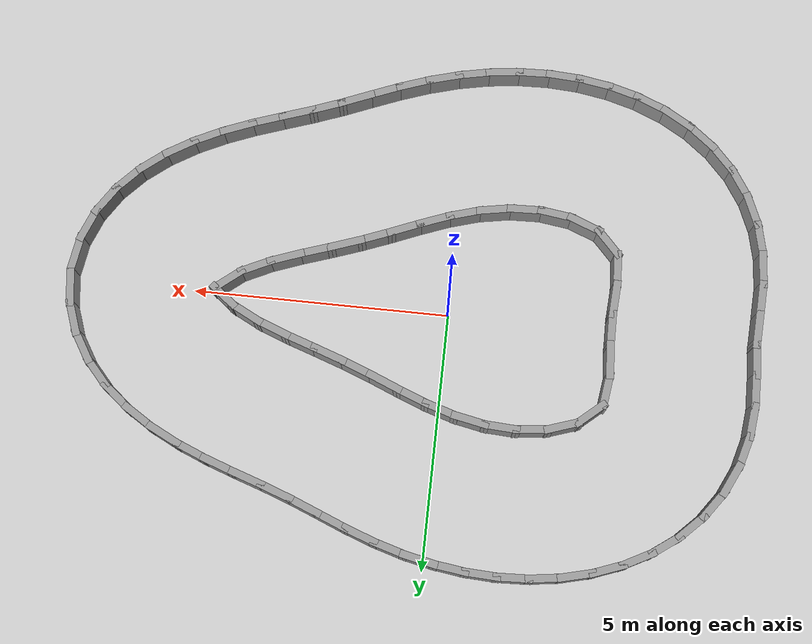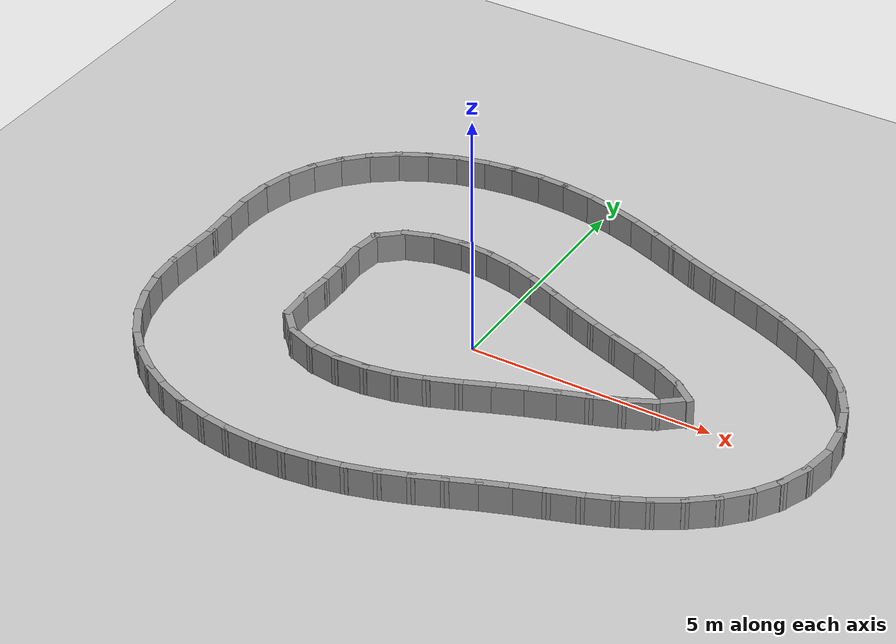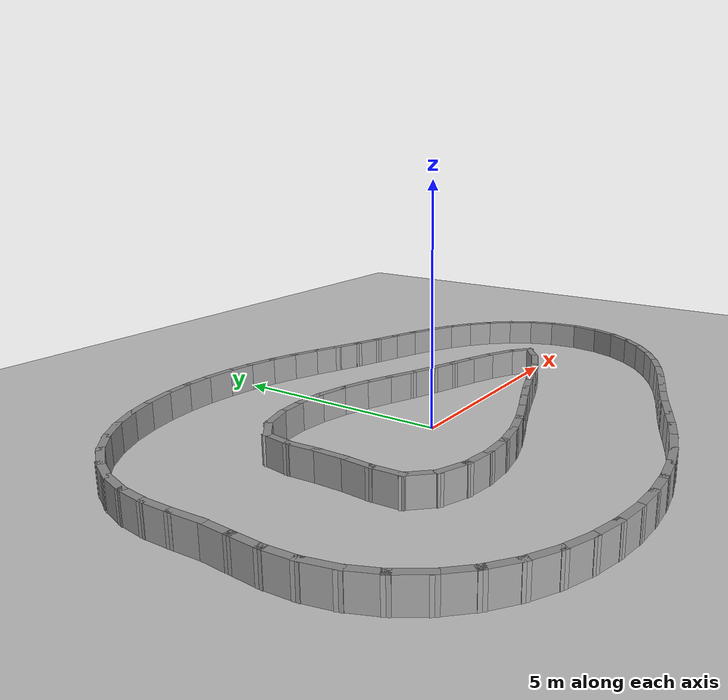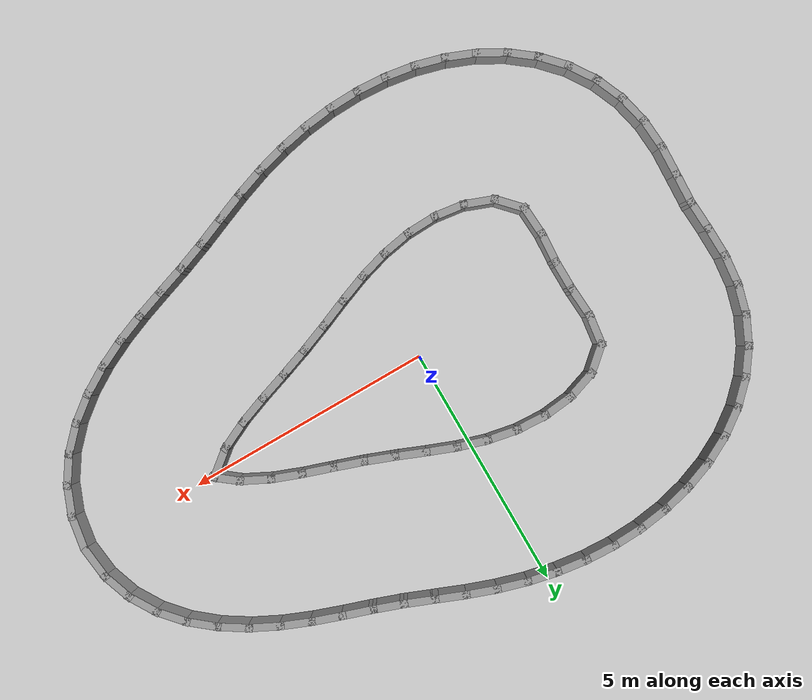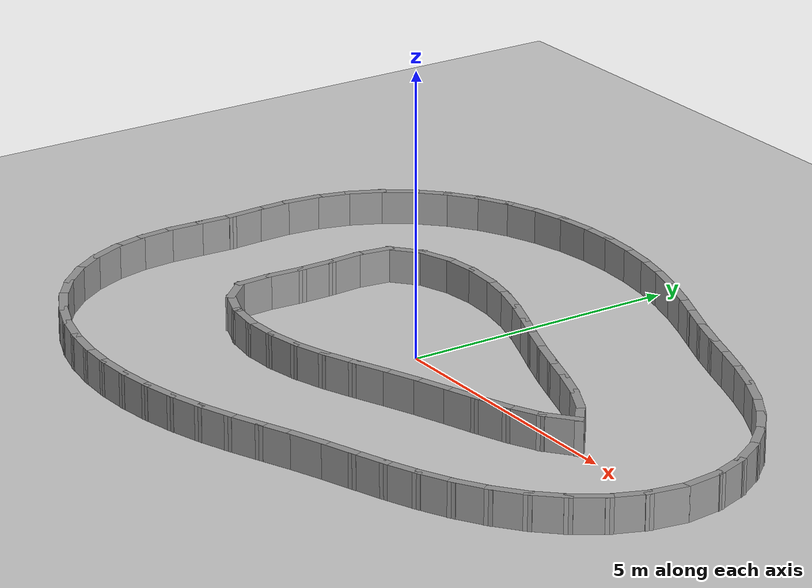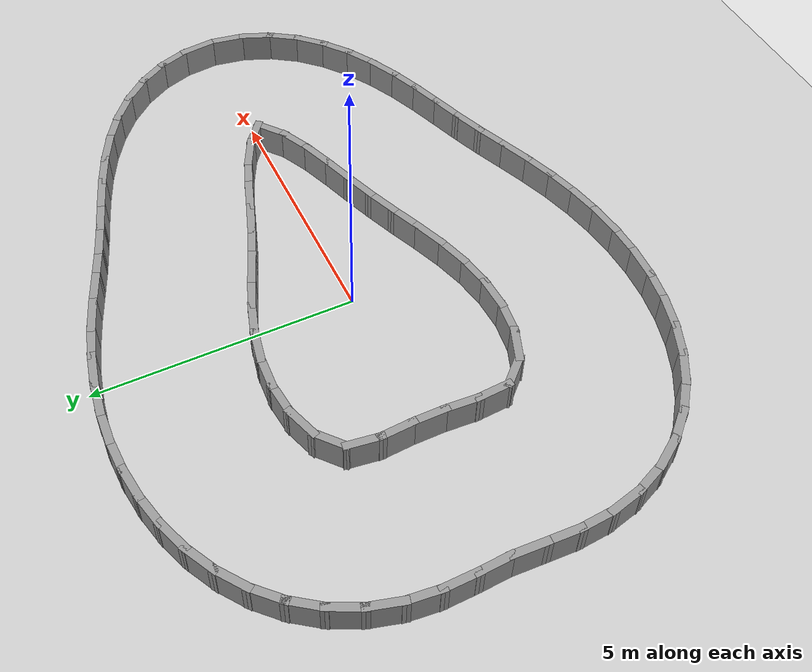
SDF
<sdf version="1.7">
 <world name="default">
  <model name="ground_plane">
   <static>1</static>
   <link name="link">
    <collision name="collision">
     <geometry><plane><normal>0 0 1</normal><size>100 100</size></plane></geometry>
     <surface><friction><ode><mu>100</mu><mu2>50</mu2></ode></friction></surface>
    </collision>
    <visual name="visual">
     <cast_shadows>0</cast_shadows>
     <geometry><plane><normal>0 0 1</normal><size>100 100</size></plane></geometry>
     <material>
      <script><uri>file://media/materials/scripts/gazebo.material</uri><name>Gazebo/Grey</name></script>
     </material>
    </visual>
   </link>
  </model>
  <model name="rand_lobed_04">
   <link name="Wall_0">
    <collision name="Wall_0_Collision">
     <geometry><box><size>0.6586 0.1500 0.6000</size></box></geometry>
     <pose>0 0 0.3000 0 -0 0</pose>
    </collision>
    <visual name="Wall_0_Visual">
     <pose>0 0 0.3000 0 -0 0</pose>
     <geometry><box><size>0.6586 0.1500 0.6000</size></box></geometry>
     <material>
      <script><uri>file://media/materials/scripts/gazebo.material</uri><name>Gazebo/Grey</name></script>
      <ambient>1 1 1 1</ambient>
     </material>
    </visual>
    <pose>4.3463 0.1569 0 0 -0 2.47651</pose>
   </link>
   <link name="Wall_1">
    <collision name="Wall_1_Collision">
     <geometry><box><size>0.7494 0.1500 0.6000</size></box></geometry>
     <pose>0 0 0.3000 0 -0 0</pose>
    </collision>
    <visual name="Wall_1_Visual">
     <pose>0 0 0.3000 0 -0 0</pose>
     <geometry><box><size>0.7494 0.1500 0.6000</size></box></geometry>
     <material>
      <script><uri>file://media/materials/scripts/gazebo.material</uri><name>Gazebo/Grey</name></script>
      <ambient>1 1 1 1</ambient>
     </material>
    </visual>
    <pose>3.8788 0.4494 0 0 -0 2.67255</pose>
   </link>
   <link name="Wall_2">
    <collision name="Wall_2_Collision">
     <geometry><box><size>0.7499 0.1500 0.6000</size></box></geometry>
     <pose>0 0 0.3000 0 -0 0</pose>
    </collision>
    <visual name="Wall_2_Visual">
     <pose>0 0 0.3000 0 -0 0</pose>
     <geometry><box><size>0.7499 0.1500 0.6000</size></box></geometry>
     <material>
      <script><uri>file://media/materials/scripts/gazebo.material</uri><name>Gazebo/Grey</name></script>
      <ambient>1 1 1 1</ambient>
     </material>
    </visual>
    <pose>3.3312 0.6915 0 0 -0 2.77813</pose>
   </link>
   <link name="Wall_3">
    <collision name="Wall_3_Collision">
     <geometry><box><size>0.7500 0.1500 0.6000</size></box></geometry>
     <pose>0 0 0.3000 0 -0 0</pose>
    </collision>
    <visual name="Wall_3_Visual">
     <pose>0 0 0.3000 0 -0 0</pose>
     <geometry><box><size>0.7500 0.1500 0.6000</size></box></geometry>
     <material>
      <script><uri>file://media/materials/scripts/gazebo.material</uri><name>Gazebo/Grey</name></script>
      <ambient>1 1 1 1</ambient>
     </material>
    </visual>
    <pose>2.7666 0.8940 0 0 -0 2.81615</pose>
   </link>
   <link name="Wall_4">
    <collision name="Wall_4_Collision">
     <geometry><box><size>0.7500 0.1500 0.6000</size></box></geometry>
     <pose>0 0 0.3000 0 -0 0</pose>
    </collision>
    <visual name="Wall_4_Visual">
     <pose>0 0 0.3000 0 -0 0</pose>
     <geometry><box><size>0.7500 0.1500 0.6000</size></box></geometry>
     <material>
      <script><uri>file://media/materials/scripts/gazebo.material</uri><name>Gazebo/Grey</name></script>
      <ambient>1 1 1 1</ambient>
     </material>
    </visual>
    <pose>2.1989 1.0882 0 0 -0 2.80778</pose>
   </link>
   <link name="Wall_5">
    <collision name="Wall_5_Collision">
     <geometry><box><size>0.7500 0.1500 0.6000</size></box></geometry>
     <pose>0 0 0.3000 0 -0 0</pose>
    </collision>
    <visual name="Wall_5_Visual">
     <pose>0 0 0.3000 0 -0 0</pose>
     <geometry><box><size>0.7500 0.1500 0.6000</size></box></geometry>
     <material>
      <script><uri>file://media/materials/scripts/gazebo.material</uri><name>Gazebo/Grey</name></script>
      <ambient>1 1 1 1</ambient>
     </material>
    </visual>
    <pose>1.6353 1.2939 0 0 -0 2.77568</pose>
   </link>
   <link name="Wall_6">
    <collision name="Wall_6_Collision">
     <geometry><box><size>0.7500 0.1500 0.6000</size></box></geometry>
     <pose>0 0 0.3000 0 -0 0</pose>
    </collision>
    <visual name="Wall_6_Visual">
     <pose>0 0 0.3000 0 -0 0</pose>
     <geometry><box><size>0.7500 0.1500 0.6000</size></box></geometry>
     <material>
      <script><uri>file://media/materials/scripts/gazebo.material</uri><name>Gazebo/Grey</name></script>
      <ambient>1 1 1 1</ambient>
     </material>
    </visual>
    <pose>1.0776 1.5149 0 0 -0 2.75279</pose>
   </link>
   <link name="Wall_7">
    <collision name="Wall_7_Collision">
     <geometry><box><size>0.7499 0.1500 0.6000</size></box></geometry>
     <pose>0 0 0.3000 0 -0 0</pose>
    </collision>
    <visual name="Wall_7_Visual">
     <pose>0 0 0.3000 0 -0 0</pose>
     <geometry><box><size>0.7499 0.1500 0.6000</size></box></geometry>
     <material>
      <script><uri>file://media/materials/scripts/gazebo.material</uri><name>Gazebo/Grey</name></script>
      <ambient>1 1 1 1</ambient>
     </material>
    </visual>
    <pose>0.5204 1.7374 0 0 -0 2.77068</pose>
   </link>
   <link name="Wall_8">
    <collision name="Wall_8_Collision">
     <geometry><box><size>0.7498 0.1500 0.6000</size></box></geometry>
     <pose>0 0 0.3000 0 -0 0</pose>
    </collision>
    <visual name="Wall_8_Visual">
     <pose>0 0 0.3000 0 -0 0</pose>
     <geometry><box><size>0.7498 0.1500 0.6000</size></box></geometry>
     <material>
      <script><uri>file://media/materials/scripts/gazebo.material</uri><name>Gazebo/Grey</name></script>
      <ambient>1 1 1 1</ambient>
     </material>
    </visual>
    <pose>-0.0455 1.9352 0 0 -0 2.83989</pose>
   </link>
   <link name="Wall_9">
    <collision name="Wall_9_Collision">
     <geometry><box><size>0.7496 0.1500 0.6000</size></box></geometry>
     <pose>0 0 0.3000 0 -0 0</pose>
    </collision>
    <visual name="Wall_9_Visual">
     <pose>0 0 0.3000 0 -0 0</pose>
     <geometry><box><size>0.7496 0.1500 0.6000</size></box></geometry>
     <material>
      <script><uri>file://media/materials/scripts/gazebo.material</uri><name>Gazebo/Grey</name></script>
      <ambient>1 1 1 1</ambient>
     </material>
    </visual>
    <pose>-0.6261 2.0819 0 0 -0 2.94856</pose>
   </link>
   <link name="Wall_10">
    <collision name="Wall_10_Collision">
     <geometry><box><size>0.7495 0.1500 0.6000</size></box></geometry>
     <pose>0 0 0.3000 0 -0 0</pose>
    </collision>
    <visual name="Wall_10_Visual">
     <pose>0 0 0.3000 0 -0 0</pose>
     <geometry><box><size>0.7495 0.1500 0.6000</size></box></geometry>
     <material>
      <script><uri>file://media/materials/scripts/gazebo.material</uri><name>Gazebo/Grey</name></script>
      <ambient>1 1 1 1</ambient>
     </material>
    </visual>
    <pose>-1.2196 2.1566 0 0 -0 3.08397</pose>
   </link>
   <link name="Wall_11">
    <collision name="Wall_11_Collision">
     <geometry><box><size>0.7492 0.1500 0.6000</size></box></geometry>
     <pose>0 0 0.3000 0 -0 0</pose>
    </collision>
    <visual name="Wall_11_Visual">
     <pose>0 0 0.3000 0 -0 0</pose>
     <geometry><box><size>0.7492 0.1500 0.6000</size></box></geometry>
     <material>
      <script><uri>file://media/materials/scripts/gazebo.material</uri><name>Gazebo/Grey</name></script>
      <ambient>1 1 1 1</ambient>
     </material>
    </visual>
    <pose>-1.8167 2.1422 0 0 -0 -3.03568</pose>
   </link>
   <link name="Wall_12">
    <collision name="Wall_12_Collision">
     <geometry><box><size>0.7483 0.1500 0.6000</size></box></geometry>
     <pose>0 0 0.3000 0 -0 0</pose>
    </collision>
    <visual name="Wall_12_Visual">
     <pose>0 0 0.3000 0 -0 0</pose>
     <geometry><box><size>0.7483 0.1500 0.6000</size></box></geometry>
     <material>
      <script><uri>file://media/materials/scripts/gazebo.material</uri><name>Gazebo/Grey</name></script>
      <ambient>1 1 1 1</ambient>
     </material>
    </visual>
    <pose>-2.3983 2.0155 0 0 -0 -2.81832</pose>
   </link>
   <link name="Wall_13">
    <collision name="Wall_13_Collision">
     <geometry><box><size>0.7410 0.1500 0.6000</size></box></geometry>
     <pose>0 0 0.3000 0 -0 0</pose>
    </collision>
    <visual name="Wall_13_Visual">
     <pose>0 0 0.3000 0 -0 0</pose>
     <geometry><box><size>0.7410 0.1500 0.6000</size></box></geometry>
     <material>
      <script><uri>file://media/materials/scripts/gazebo.material</uri><name>Gazebo/Grey</name></script>
      <ambient>1 1 1 1</ambient>
     </material>
    </visual>
    <pose>-2.9051 1.7268 0 0 -0 -2.42696</pose>
   </link>
   <link name="Wall_14">
    <collision name="Wall_14_Collision">
     <geometry><box><size>0.7429 0.1500 0.6000</size></box></geometry>
     <pose>0 0 0.3000 0 -0 0</pose>
    </collision>
    <visual name="Wall_14_Visual">
     <pose>0 0 0.3000 0 -0 0</pose>
     <geometry><box><size>0.7429 0.1500 0.6000</size></box></geometry>
     <material>
      <script><uri>file://media/materials/scripts/gazebo.material</uri><name>Gazebo/Grey</name></script>
      <ambient>1 1 1 1</ambient>
     </material>
    </visual>
    <pose>-3.1674 1.2393 0 0 -0 -1.70297</pose>
   </link>
   <link name="Wall_15">
    <collision name="Wall_15_Collision">
     <geometry><box><size>0.7500 0.1500 0.6000</size></box></geometry>
     <pose>0 0 0.3000 0 -0 0</pose>
    </collision>
    <visual name="Wall_15_Visual">
     <pose>0 0 0.3000 0 -0 0</pose>
     <geometry><box><size>0.7500 0.1500 0.6000</size></box></geometry>
     <material>
      <script><uri>file://media/materials/scripts/gazebo.material</uri><name>Gazebo/Grey</name></script>
      <ambient>1 1 1 1</ambient>
     </material>
    </visual>
    <pose>-3.1875 0.6461 0 0 -0 -1.50761</pose>
   </link>
   <link name="Wall_16">
    <collision name="Wall_16_Collision">
     <geometry><box><size>0.7498 0.1500 0.6000</size></box></geometry>
     <pose>0 0 0.3000 0 -0 0</pose>
    </collision>
    <visual name="Wall_16_Visual">
     <pose>0 0 0.3000 0 -0 0</pose>
     <geometry><box><size>0.7498 0.1500 0.6000</size></box></geometry>
     <material>
      <script><uri>file://media/materials/scripts/gazebo.material</uri><name>Gazebo/Grey</name></script>
      <ambient>1 1 1 1</ambient>
     </material>
    </visual>
    <pose>-3.1666 0.0468 0 0 -0 -1.56407</pose>
   </link>
   <link name="Wall_17">
    <collision name="Wall_17_Collision">
     <geometry><box><size>0.7500 0.1500 0.6000</size></box></geometry>
     <pose>0 0 0.3000 0 -0 0</pose>
    </collision>
    <visual name="Wall_17_Visual">
     <pose>0 0 0.3000 0 -0 0</pose>
     <geometry><box><size>0.7500 0.1500 0.6000</size></box></geometry>
     <material>
      <script><uri>file://media/materials/scripts/gazebo.material</uri><name>Gazebo/Grey</name></script>
      <ambient>1 1 1 1</ambient>
     </material>
    </visual>
    <pose>-3.1829 -0.5525 0 0 -0 -1.63219</pose>
   </link>
   <link name="Wall_18">
    <collision name="Wall_18_Collision">
     <geometry><box><size>0.7464 0.1500 0.6000</size></box></geometry>
     <pose>0 0 0.3000 0 -0 0</pose>
    </collision>
    <visual name="Wall_18_Visual">
     <pose>0 0 0.3000 0 -0 0</pose>
     <geometry><box><size>0.7464 0.1500 0.6000</size></box></geometry>
     <material>
      <script><uri>file://media/materials/scripts/gazebo.material</uri><name>Gazebo/Grey</name></script>
      <ambient>1 1 1 1</ambient>
     </material>
    </visual>
    <pose>-3.1834 -1.1496 0 0 -0 -1.51058</pose>
   </link>
   <link name="Wall_19">
    <collision name="Wall_19_Collision">
     <geometry><box><size>0.7371 0.1500 0.6000</size></box></geometry>
     <pose>0 0 0.3000 0 -0 0</pose>
    </collision>
    <visual name="Wall_19_Visual">
     <pose>0 0 0.3000 0 -0 0</pose>
     <geometry><box><size>0.7371 0.1500 0.6000</size></box></geometry>
     <material>
      <script><uri>file://media/materials/scripts/gazebo.material</uri><name>Gazebo/Grey</name></script>
      <ambient>1 1 1 1</ambient>
     </material>
    </visual>
    <pose>-2.9649 -1.6616 0 0 -0 -0.81848</pose>
   </link>
   <link name="Wall_20">
    <collision name="Wall_20_Collision">
     <geometry><box><size>0.7479 0.1500 0.6000</size></box></geometry>
     <pose>0 0 0.3000 0 -0 0</pose>
    </collision>
    <visual name="Wall_20_Visual">
     <pose>0 0 0.3000 0 -0 0</pose>
     <geometry><box><size>0.7479 0.1500 0.6000</size></box></geometry>
     <material>
      <script><uri>file://media/materials/scripts/gazebo.material</uri><name>Gazebo/Grey</name></script>
      <ambient>1 1 1 1</ambient>
     </material>
    </visual>
    <pose>-2.4852 -1.9831 0 0 -0 -0.36658</pose>
   </link>
   <link name="Wall_21">
    <collision name="Wall_21_Collision">
     <geometry><box><size>0.7491 0.1500 0.6000</size></box></geometry>
     <pose>0 0 0.3000 0 -0 0</pose>
    </collision>
    <visual name="Wall_21_Visual">
     <pose>0 0 0.3000 0 -0 0</pose>
     <geometry><box><size>0.7491 0.1500 0.6000</size></box></geometry>
     <material>
      <script><uri>file://media/materials/scripts/gazebo.material</uri><name>Gazebo/Grey</name></script>
      <ambient>1 1 1 1</ambient>
     </material>
    </visual>
    <pose>-1.9092 -2.1306 0 0 -0 -0.13513</pose>
   </link>
   <link name="Wall_22">
    <collision name="Wall_22_Collision">
     <geometry><box><size>0.7494 0.1500 0.6000</size></box></geometry>
     <pose>0 0 0.3000 0 -0 0</pose>
    </collision>
    <visual name="Wall_22_Visual">
     <pose>0 0 0.3000 0 -0 0</pose>
     <geometry><box><size>0.7494 0.1500 0.6000</size></box></geometry>
     <material>
      <script><uri>file://media/materials/scripts/gazebo.material</uri><name>Gazebo/Grey</name></script>
      <ambient>1 1 1 1</ambient>
     </material>
    </visual>
    <pose>-1.3129 -2.1607 0 0 -0 0.03424</pose>
   </link>
   <link name="Wall_23">
    <collision name="Wall_23_Collision">
     <geometry><box><size>0.7496 0.1500 0.6000</size></box></geometry>
     <pose>0 0 0.3000 0 -0 0</pose>
    </collision>
    <visual name="Wall_23_Visual">
     <pose>0 0 0.3000 0 -0 0</pose>
     <geometry><box><size>0.7496 0.1500 0.6000</size></box></geometry>
     <material>
      <script><uri>file://media/materials/scripts/gazebo.material</uri><name>Gazebo/Grey</name></script>
      <ambient>1 1 1 1</ambient>
     </material>
    </visual>
    <pose>-0.7181 -2.0987 0 0 -0 0.17348</pose>
   </link>
   <link name="Wall_24">
    <collision name="Wall_24_Collision">
     <geometry><box><size>0.7498 0.1500 0.6000</size></box></geometry>
     <pose>0 0 0.3000 0 -0 0</pose>
    </collision>
    <visual name="Wall_24_Visual">
     <pose>0 0 0.3000 0 -0 0</pose>
     <geometry><box><size>0.7498 0.1500 0.6000</size></box></geometry>
     <material>
      <script><uri>file://media/materials/scripts/gazebo.material</uri><name>Gazebo/Grey</name></script>
      <ambient>1 1 1 1</ambient>
     </material>
    </visual>
    <pose>-0.1351 -1.9621 0 0 -0 0.28691</pose>
   </link>
   <link name="Wall_25">
    <collision name="Wall_25_Collision">
     <geometry><box><size>0.7499 0.1500 0.6000</size></box></geometry>
     <pose>0 0 0.3000 0 -0 0</pose>
    </collision>
    <visual name="Wall_25_Visual">
     <pose>0 0 0.3000 0 -0 0</pose>
     <geometry><box><size>0.7499 0.1500 0.6000</size></box></geometry>
     <material>
      <script><uri>file://media/materials/scripts/gazebo.material</uri><name>Gazebo/Grey</name></script>
      <ambient>1 1 1 1</ambient>
     </material>
    </visual>
    <pose>0.4329 -1.7706 0 0 -0 0.36337</pose>
   </link>
   <link name="Wall_26">
    <collision name="Wall_26_Collision">
     <geometry><box><size>0.7500 0.1500 0.6000</size></box></geometry>
     <pose>0 0 0.3000 0 -0 0</pose>
    </collision>
    <visual name="Wall_26_Visual">
     <pose>0 0 0.3000 0 -0 0</pose>
     <geometry><box><size>0.7500 0.1500 0.6000</size></box></geometry>
     <material>
      <script><uri>file://media/materials/scripts/gazebo.material</uri><name>Gazebo/Grey</name></script>
      <ambient>1 1 1 1</ambient>
     </material>
    </visual>
    <pose>0.9908 -1.5501 0 0 -0 0.38929</pose>
   </link>
   <link name="Wall_27">
    <collision name="Wall_27_Collision">
     <geometry><box><size>0.7500 0.1500 0.6000</size></box></geometry>
     <pose>0 0 0.3000 0 -0 0</pose>
    </collision>
    <visual name="Wall_27_Visual">
     <pose>0 0 0.3000 0 -0 0</pose>
     <geometry><box><size>0.7500 0.1500 0.6000</size></box></geometry>
     <material>
      <script><uri>file://media/materials/scripts/gazebo.material</uri><name>Gazebo/Grey</name></script>
      <ambient>1 1 1 1</ambient>
     </material>
    </visual>
    <pose>1.5479 -1.3275 0 0 -0 0.37100</pose>
   </link>
   <link name="Wall_28">
    <collision name="Wall_28_Collision">
     <geometry><box><size>0.7500 0.1500 0.6000</size></box></geometry>
     <pose>0 0 0.3000 0 -0 0</pose>
    </collision>
    <visual name="Wall_28_Visual">
     <pose>0 0 0.3000 0 -0 0</pose>
     <geometry><box><size>0.7500 0.1500 0.6000</size></box></geometry>
     <material>
      <script><uri>file://media/materials/scripts/gazebo.material</uri><name>Gazebo/Grey</name></script>
      <ambient>1 1 1 1</ambient>
     </material>
    </visual>
    <pose>2.1105 -1.1193 0 0 -0 0.33800</pose>
   </link>
   <link name="Wall_29">
    <collision name="Wall_29_Collision">
     <geometry><box><size>0.7500 0.1500 0.6000</size></box></geometry>
     <pose>0 0 0.3000 0 -0 0</pose>
    </collision>
    <visual name="Wall_29_Visual">
     <pose>0 0 0.3000 0 -0 0</pose>
     <geometry><box><size>0.7500 0.1500 0.6000</size></box></geometry>
     <material>
      <script><uri>file://media/materials/scripts/gazebo.material</uri><name>Gazebo/Grey</name></script>
      <ambient>1 1 1 1</ambient>
     </material>
    </visual>
    <pose>2.6779 -0.9243 0 0 -0 0.32415</pose>
   </link>
   <link name="Wall_30">
    <collision name="Wall_30_Collision">
     <geometry><box><size>0.7499 0.1500 0.6000</size></box></geometry>
     <pose>0 0 0.3000 0 -0 0</pose>
    </collision>
    <visual name="Wall_30_Visual">
     <pose>0 0 0.3000 0 -0 0</pose>
     <geometry><box><size>0.7499 0.1500 0.6000</size></box></geometry>
     <material>
      <script><uri>file://media/materials/scripts/gazebo.material</uri><name>Gazebo/Grey</name></script>
      <ambient>1 1 1 1</ambient>
     </material>
    </visual>
    <pose>3.2437 -0.7248 0 0 -0 0.35379</pose>
   </link>
   <link name="Wall_31">
    <collision name="Wall_31_Collision">
     <geometry><box><size>0.7495 0.1500 0.6000</size></box></geometry>
     <pose>0 0 0.3000 0 -0 0</pose>
    </collision>
    <visual name="Wall_31_Visual">
     <pose>0 0 0.3000 0 -0 0</pose>
     <geometry><box><size>0.7495 0.1500 0.6000</size></box></geometry>
     <material>
      <script><uri>file://media/materials/scripts/gazebo.material</uri><name>Gazebo/Grey</name></script>
      <ambient>1 1 1 1</ambient>
     </material>
    </visual>
    <pose>3.7954 -0.4914 0 0 -0 0.44647</pose>
   </link>
   <link name="Wall_32">
    <collision name="Wall_32_Collision">
     <geometry><box><size>0.7461 0.1500 0.6000</size></box></geometry>
     <pose>0 0 0.3000 0 -0 0</pose>
    </collision>
    <visual name="Wall_32_Visual">
     <pose>0 0 0.3000 0 -0 0</pose>
     <geometry><box><size>0.7461 0.1500 0.6000</size></box></geometry>
     <material>
      <script><uri>file://media/materials/scripts/gazebo.material</uri><name>Gazebo/Grey</name></script>
      <ambient>1 1 1 1</ambient>
     </material>
    </visual>
    <pose>4.2983 -0.1755 0 0 -0 0.67607</pose>
   </link>
   <link name="Wall_33">
    <collision name="Wall_33_Collision">
     <geometry><box><size>0.7487 0.1500 0.6000</size></box></geometry>
     <pose>0 0 0.3000 0 -0 0</pose>
    </collision>
    <visual name="Wall_33_Visual">
     <pose>0 0 0.3000 0 -0 0</pose>
     <geometry><box><size>0.7487 0.1500 0.6000</size></box></geometry>
     <material>
      <script><uri>file://media/materials/scripts/gazebo.material</uri><name>Gazebo/Grey</name></script>
      <ambient>1 1 1 1</ambient>
     </material>
    </visual>
    <pose>7.3171 0.2974 0 0 -0 1.68537</pose>
   </link>
   <link name="Wall_34">
    <collision name="Wall_34_Collision">
     <geometry><box><size>0.7488 0.1500 0.6000</size></box></geometry>
     <pose>0 0 0.3000 0 -0 0</pose>
    </collision>
    <visual name="Wall_34_Visual">
     <pose>0 0 0.3000 0 -0 0</pose>
     <geometry><box><size>0.7488 0.1500 0.6000</size></box></geometry>
     <material>
      <script><uri>file://media/materials/scripts/gazebo.material</uri><name>Gazebo/Grey</name></script>
      <ambient>1 1 1 1</ambient>
     </material>
    </visual>
    <pose>7.1838 0.8773 0 0 -0 1.90836</pose>
   </link>
   <link name="Wall_35">
    <collision name="Wall_35_Collision">
     <geometry><box><size>0.7490 0.1500 0.6000</size></box></geometry>
     <pose>0 0 0.3000 0 -0 0</pose>
    </collision>
    <visual name="Wall_35_Visual">
     <pose>0 0 0.3000 0 -0 0</pose>
     <geometry><box><size>0.7490 0.1500 0.6000</size></box></geometry>
     <material>
      <script><uri>file://media/materials/scripts/gazebo.material</uri><name>Gazebo/Grey</name></script>
      <ambient>1 1 1 1</ambient>
     </material>
    </visual>
    <pose>6.9296 1.4161 0 0 -0 2.11467</pose>
   </link>
   <link name="Wall_36">
    <collision name="Wall_36_Collision">
     <geometry><box><size>0.7493 0.1500 0.6000</size></box></geometry>
     <pose>0 0 0.3000 0 -0 0</pose>
    </collision>
    <visual name="Wall_36_Visual">
     <pose>0 0 0.3000 0 -0 0</pose>
     <geometry><box><size>0.7493 0.1500 0.6000</size></box></geometry>
     <material>
      <script><uri>file://media/materials/scripts/gazebo.material</uri><name>Gazebo/Grey</name></script>
      <ambient>1 1 1 1</ambient>
     </material>
    </visual>
    <pose>6.5758 1.8966 0 0 -0 2.29629</pose>
   </link>
   <link name="Wall_37">
    <collision name="Wall_37_Collision">
     <geometry><box><size>0.7495 0.1500 0.6000</size></box></geometry>
     <pose>0 0 0.3000 0 -0 0</pose>
    </collision>
    <visual name="Wall_37_Visual">
     <pose>0 0 0.3000 0 -0 0</pose>
     <geometry><box><size>0.7495 0.1500 0.6000</size></box></geometry>
     <material>
      <script><uri>file://media/materials/scripts/gazebo.material</uri><name>Gazebo/Grey</name></script>
      <ambient>1 1 1 1</ambient>
     </material>
    </visual>
    <pose>6.1461 2.3120 0 0 -0 2.44978</pose>
   </link>
   <link name="Wall_38">
    <collision name="Wall_38_Collision">
     <geometry><box><size>0.7497 0.1500 0.6000</size></box></geometry>
     <pose>0 0 0.3000 0 -0 0</pose>
    </collision>
    <visual name="Wall_38_Visual">
     <pose>0 0 0.3000 0 -0 0</pose>
     <geometry><box><size>0.7497 0.1500 0.6000</size></box></geometry>
     <material>
      <script><uri>file://media/materials/scripts/gazebo.material</uri><name>Gazebo/Grey</name></script>
      <ambient>1 1 1 1</ambient>
     </material>
    </visual>
    <pose>5.6622 2.6640 0 0 -0 2.57557</pose>
   </link>
   <link name="Wall_39">
    <collision name="Wall_39_Collision">
     <geometry><box><size>0.7498 0.1500 0.6000</size></box></geometry>
     <pose>0 0 0.3000 0 -0 0</pose>
    </collision>
    <visual name="Wall_39_Visual">
     <pose>0 0 0.3000 0 -0 0</pose>
     <geometry><box><size>0.7498 0.1500 0.6000</size></box></geometry>
     <material>
      <script><uri>file://media/materials/scripts/gazebo.material</uri><name>Gazebo/Grey</name></script>
      <ambient>1 1 1 1</ambient>
     </material>
    </visual>
    <pose>5.1412 2.9595 0 0 -0 2.67579</pose>
   </link>
   <link name="Wall_40">
    <collision name="Wall_40_Collision">
     <geometry><box><size>0.7499 0.1500 0.6000</size></box></geometry>
     <pose>0 0 0.3000 0 -0 0</pose>
    </collision>
    <visual name="Wall_40_Visual">
     <pose>0 0 0.3000 0 -0 0</pose>
     <geometry><box><size>0.7499 0.1500 0.6000</size></box></geometry>
     <material>
      <script><uri>file://media/materials/scripts/gazebo.material</uri><name>Gazebo/Grey</name></script>
      <ambient>1 1 1 1</ambient>
     </material>
    </visual>
    <pose>4.5958 3.2083 0 0 -0 2.75162</pose>
   </link>
   <link name="Wall_41">
    <collision name="Wall_41_Collision">
     <geometry><box><size>0.7500 0.1500 0.6000</size></box></geometry>
     <pose>0 0 0.3000 0 -0 0</pose>
    </collision>
    <visual name="Wall_41_Visual">
     <pose>0 0 0.3000 0 -0 0</pose>
     <geometry><box><size>0.7500 0.1500 0.6000</size></box></geometry>
     <material>
      <script><uri>file://media/materials/scripts/gazebo.material</uri><name>Gazebo/Grey</name></script>
      <ambient>1 1 1 1</ambient>
     </material>
    </visual>
    <pose>4.0356 3.4224 0 0 -0 2.80123</pose>
   </link>
   <link name="Wall_42">
    <collision name="Wall_42_Collision">
     <geometry><box><size>0.7500 0.1500 0.6000</size></box></geometry>
     <pose>0 0 0.3000 0 -0 0</pose>
    </collision>
    <visual name="Wall_42_Visual">
     <pose>0 0 0.3000 0 -0 0</pose>
     <geometry><box><size>0.7500 0.1500 0.6000</size></box></geometry>
     <material>
      <script><uri>file://media/materials/scripts/gazebo.material</uri><name>Gazebo/Grey</name></script>
      <ambient>1 1 1 1</ambient>
     </material>
    </visual>
    <pose>3.4685 3.6181 0 0 -0 2.81755</pose>
   </link>
   <link name="Wall_43">
    <collision name="Wall_43_Collision">
     <geometry><box><size>0.7500 0.1500 0.6000</size></box></geometry>
     <pose>0 0 0.3000 0 -0 0</pose>
    </collision>
    <visual name="Wall_43_Visual">
     <pose>0 0 0.3000 0 -0 0</pose>
     <geometry><box><size>0.7500 0.1500 0.6000</size></box></geometry>
     <material>
      <script><uri>file://media/materials/scripts/gazebo.material</uri><name>Gazebo/Grey</name></script>
      <ambient>1 1 1 1</ambient>
     </material>
    </visual>
    <pose>2.9020 3.8157 0 0 -0 2.79449</pose>
   </link>
   <link name="Wall_44">
    <collision name="Wall_44_Collision">
     <geometry><box><size>0.7500 0.1500 0.6000</size></box></geometry>
     <pose>0 0 0.3000 0 -0 0</pose>
    </collision>
    <visual name="Wall_44_Visual">
     <pose>0 0 0.3000 0 -0 0</pose>
     <geometry><box><size>0.7500 0.1500 0.6000</size></box></geometry>
     <material>
      <script><uri>file://media/materials/scripts/gazebo.material</uri><name>Gazebo/Grey</name></script>
      <ambient>1 1 1 1</ambient>
     </material>
    </visual>
    <pose>2.3416 4.0298 0 0 -0 2.75859</pose>
   </link>
   <link name="Wall_45">
    <collision name="Wall_45_Collision">
     <geometry><box><size>0.7500 0.1500 0.6000</size></box></geometry>
     <pose>0 0 0.3000 0 -0 0</pose>
    </collision>
    <visual name="Wall_45_Visual">
     <pose>0 0 0.3000 0 -0 0</pose>
     <geometry><box><size>0.7500 0.1500 0.6000</size></box></geometry>
     <material>
      <script><uri>file://media/materials/scripts/gazebo.material</uri><name>Gazebo/Grey</name></script>
      <ambient>1 1 1 1</ambient>
     </material>
    </visual>
    <pose>1.7853 4.2544 0 0 -0 2.75732</pose>
   </link>
   <link name="Wall_46">
    <collision name="Wall_46_Collision">
     <geometry><box><size>0.7499 0.1500 0.6000</size></box></geometry>
     <pose>0 0 0.3000 0 -0 0</pose>
    </collision>
    <visual name="Wall_46_Visual">
     <pose>0 0 0.3000 0 -0 0</pose>
     <geometry><box><size>0.7499 0.1500 0.6000</size></box></geometry>
     <material>
      <script><uri>file://media/materials/scripts/gazebo.material</uri><name>Gazebo/Grey</name></script>
      <ambient>1 1 1 1</ambient>
     </material>
    </visual>
    <pose>1.2250 4.4689 0 0 -0 2.79460</pose>
   </link>
   <link name="Wall_47">
    <collision name="Wall_47_Collision">
     <geometry><box><size>0.7499 0.1500 0.6000</size></box></geometry>
     <pose>0 0 0.3000 0 -0 0</pose>
    </collision>
    <visual name="Wall_47_Visual">
     <pose>0 0 0.3000 0 -0 0</pose>
     <geometry><box><size>0.7499 0.1500 0.6000</size></box></geometry>
     <material>
      <script><uri>file://media/materials/scripts/gazebo.material</uri><name>Gazebo/Grey</name></script>
      <ambient>1 1 1 1</ambient>
     </material>
    </visual>
    <pose>0.6553 4.6558 0 0 -0 2.85461</pose>
   </link>
   <link name="Wall_48">
    <collision name="Wall_48_Collision">
     <geometry><box><size>0.7499 0.1500 0.6000</size></box></geometry>
     <pose>0 0 0.3000 0 -0 0</pose>
    </collision>
    <visual name="Wall_48_Visual">
     <pose>0 0 0.3000 0 -0 0</pose>
     <geometry><box><size>0.7499 0.1500 0.6000</size></box></geometry>
     <material>
      <script><uri>file://media/materials/scripts/gazebo.material</uri><name>Gazebo/Grey</name></script>
      <ambient>1 1 1 1</ambient>
     </material>
    </visual>
    <pose>0.0746 4.8046 0 0 -0 2.92682</pose>
   </link>
   <link name="Wall_49">
    <collision name="Wall_49_Collision">
     <geometry><box><size>0.7498 0.1500 0.6000</size></box></geometry>
     <pose>0 0 0.3000 0 -0 0</pose>
    </collision>
    <visual name="Wall_49_Visual">
     <pose>0 0 0.3000 0 -0 0</pose>
     <geometry><box><size>0.7498 0.1500 0.6000</size></box></geometry>
     <material>
      <script><uri>file://media/materials/scripts/gazebo.material</uri><name>Gazebo/Grey</name></script>
      <ambient>1 1 1 1</ambient>
     </material>
    </visual>
    <pose>-0.5156 4.9089 0 0 -0 3.00641</pose>
   </link>
   <link name="Wall_50">
    <collision name="Wall_50_Collision">
     <geometry><box><size>0.7498 0.1500 0.6000</size></box></geometry>
     <pose>0 0 0.3000 0 -0 0</pose>
    </collision>
    <visual name="Wall_50_Visual">
     <pose>0 0 0.3000 0 -0 0</pose>
     <geometry><box><size>0.7498 0.1500 0.6000</size></box></geometry>
     <material>
      <script><uri>file://media/materials/scripts/gazebo.material</uri><name>Gazebo/Grey</name></script>
      <ambient>1 1 1 1</ambient>
     </material>
    </visual>
    <pose>-1.1123 4.9644 0 0 -0 3.09153</pose>
   </link>
   <link name="Wall_51">
    <collision name="Wall_51_Collision">
     <geometry><box><size>0.7498 0.1500 0.6000</size></box></geometry>
     <pose>0 0 0.3000 0 -0 0</pose>
    </collision>
    <visual name="Wall_51_Visual">
     <pose>0 0 0.3000 0 -0 0</pose>
     <geometry><box><size>0.7498 0.1500 0.6000</size></box></geometry>
     <material>
      <script><uri>file://media/materials/scripts/gazebo.material</uri><name>Gazebo/Grey</name></script>
      <ambient>1 1 1 1</ambient>
     </material>
    </visual>
    <pose>-1.7115 4.9672 0 0 -0 -3.10101</pose>
   </link>
   <link name="Wall_52">
    <collision name="Wall_52_Collision">
     <geometry><box><size>0.7497 0.1500 0.6000</size></box></geometry>
     <pose>0 0 0.3000 0 -0 0</pose>
    </collision>
    <visual name="Wall_52_Visual">
     <pose>0 0 0.3000 0 -0 0</pose>
     <geometry><box><size>0.7497 0.1500 0.6000</size></box></geometry>
     <material>
      <script><uri>file://media/materials/scripts/gazebo.material</uri><name>Gazebo/Grey</name></script>
      <ambient>1 1 1 1</ambient>
     </material>
    </visual>
    <pose>-2.3082 4.9139 0 0 -0 -3.00392</pose>
   </link>
   <link name="Wall_53">
    <collision name="Wall_53_Collision">
     <geometry><box><size>0.7497 0.1500 0.6000</size></box></geometry>
     <pose>0 0 0.3000 0 -0 0</pose>
    </collision>
    <visual name="Wall_53_Visual">
     <pose>0 0 0.3000 0 -0 0</pose>
     <geometry><box><size>0.7497 0.1500 0.6000</size></box></geometry>
     <material>
      <script><uri>file://media/materials/scripts/gazebo.material</uri><name>Gazebo/Grey</name></script>
      <ambient>1 1 1 1</ambient>
     </material>
    </visual>
    <pose>-2.8963 4.8006 0 0 -0 -2.89865</pose>
   </link>
   <link name="Wall_54">
    <collision name="Wall_54_Collision">
     <geometry><box><size>0.7496 0.1500 0.6000</size></box></geometry>
     <pose>0 0 0.3000 0 -0 0</pose>
    </collision>
    <visual name="Wall_54_Visual">
     <pose>0 0 0.3000 0 -0 0</pose>
     <geometry><box><size>0.7496 0.1500 0.6000</size></box></geometry>
     <material>
      <script><uri>file://media/materials/scripts/gazebo.material</uri><name>Gazebo/Grey</name></script>
      <ambient>1 1 1 1</ambient>
     </material>
    </visual>
    <pose>-3.4681 4.6233 0 0 -0 -2.78317</pose>
   </link>
   <link name="Wall_55">
    <collision name="Wall_55_Collision">
     <geometry><box><size>0.7495 0.1500 0.6000</size></box></geometry>
     <pose>0 0 0.3000 0 -0 0</pose>
    </collision>
    <visual name="Wall_55_Visual">
     <pose>0 0 0.3000 0 -0 0</pose>
     <geometry><box><size>0.7495 0.1500 0.6000</size></box></geometry>
     <material>
      <script><uri>file://media/materials/scripts/gazebo.material</uri><name>Gazebo/Grey</name></script>
      <ambient>1 1 1 1</ambient>
     </material>
    </visual>
    <pose>-4.0139 4.3780 0 0 -0 -2.65538</pose>
   </link>
   <link name="Wall_56">
    <collision name="Wall_56_Collision">
     <geometry><box><size>0.7494 0.1500 0.6000</size></box></geometry>
     <pose>0 0 0.3000 0 -0 0</pose>
    </collision>
    <visual name="Wall_56_Visual">
     <pose>0 0 0.3000 0 -0 0</pose>
     <geometry><box><size>0.7494 0.1500 0.6000</size></box></geometry>
     <material>
      <script><uri>file://media/materials/scripts/gazebo.material</uri><name>Gazebo/Grey</name></script>
      <ambient>1 1 1 1</ambient>
     </material>
    </visual>
    <pose>-4.5214 4.0619 0 0 -0 -2.51358</pose>
   </link>
   <link name="Wall_57">
    <collision name="Wall_57_Collision">
     <geometry><box><size>0.7493 0.1500 0.6000</size></box></geometry>
     <pose>0 0 0.3000 0 -0 0</pose>
    </collision>
    <visual name="Wall_57_Visual">
     <pose>0 0 0.3000 0 -0 0</pose>
     <geometry><box><size>0.7493 0.1500 0.6000</size></box></geometry>
     <material>
      <script><uri>file://media/materials/scripts/gazebo.material</uri><name>Gazebo/Grey</name></script>
      <ambient>1 1 1 1</ambient>
     </material>
    </visual>
    <pose>-4.9761 3.6741 0 0 -0 -2.35740</pose>
   </link>
   <link name="Wall_58">
    <collision name="Wall_58_Collision">
     <geometry><box><size>0.7492 0.1500 0.6000</size></box></geometry>
     <pose>0 0 0.3000 0 -0 0</pose>
    </collision>
    <visual name="Wall_58_Visual">
     <pose>0 0 0.3000 0 -0 0</pose>
     <geometry><box><size>0.7492 0.1500 0.6000</size></box></geometry>
     <material>
      <script><uri>file://media/materials/scripts/gazebo.material</uri><name>Gazebo/Grey</name></script>
      <ambient>1 1 1 1</ambient>
     </material>
    </visual>
    <pose>-5.3619 3.2183 0 0 -0 -2.18897</pose>
   </link>
   <link name="Wall_59">
    <collision name="Wall_59_Collision">
     <geometry><box><size>0.7492 0.1500 0.6000</size></box></geometry>
     <pose>0 0 0.3000 0 -0 0</pose>
    </collision>
    <visual name="Wall_59_Visual">
     <pose>0 0 0.3000 0 -0 0</pose>
     <geometry><box><size>0.7492 0.1500 0.6000</size></box></geometry>
     <material>
      <script><uri>file://media/materials/scripts/gazebo.material</uri><name>Gazebo/Grey</name></script>
      <ambient>1 1 1 1</ambient>
     </material>
    </visual>
    <pose>-5.6637 2.7033 0 0 -0 -2.01287</pose>
   </link>
   <link name="Wall_60">
    <collision name="Wall_60_Collision">
     <geometry><box><size>0.7493 0.1500 0.6000</size></box></geometry>
     <pose>0 0 0.3000 0 -0 0</pose>
    </collision>
    <visual name="Wall_60_Visual">
     <pose>0 0 0.3000 0 -0 0</pose>
     <geometry><box><size>0.7493 0.1500 0.6000</size></box></geometry>
     <material>
      <script><uri>file://media/materials/scripts/gazebo.material</uri><name>Gazebo/Grey</name></script>
      <ambient>1 1 1 1</ambient>
     </material>
    </visual>
    <pose>-5.8709 2.1435 0 0 -0 -1.83767</pose>
   </link>
   <link name="Wall_61">
    <collision name="Wall_61_Collision">
     <geometry><box><size>0.7494 0.1500 0.6000</size></box></geometry>
     <pose>0 0 0.3000 0 -0 0</pose>
    </collision>
    <visual name="Wall_61_Visual">
     <pose>0 0 0.3000 0 -0 0</pose>
     <geometry><box><size>0.7494 0.1500 0.6000</size></box></geometry>
     <material>
      <script><uri>file://media/materials/scripts/gazebo.material</uri><name>Gazebo/Grey</name></script>
      <ambient>1 1 1 1</ambient>
     </material>
    </visual>
    <pose>-5.9814 1.5564 0 0 -0 -1.67574</pose>
   </link>
   <link name="Wall_62">
    <collision name="Wall_62_Collision">
     <geometry><box><size>0.7498 0.1500 0.6000</size></box></geometry>
     <pose>0 0 0.3000 0 -0 0</pose>
    </collision>
    <visual name="Wall_62_Visual">
     <pose>0 0 0.3000 0 -0 0</pose>
     <geometry><box><size>0.7498 0.1500 0.6000</size></box></geometry>
     <material>
      <script><uri>file://media/materials/scripts/gazebo.material</uri><name>Gazebo/Grey</name></script>
      <ambient>1 1 1 1</ambient>
     </material>
    </visual>
    <pose>-6.0062 0.9585 0 0 -0 -1.54905</pose>
   </link>
   <link name="Wall_63">
    <collision name="Wall_63_Collision">
     <geometry><box><size>0.7499 0.1500 0.6000</size></box></geometry>
     <pose>0 0 0.3000 0 -0 0</pose>
    </collision>
    <visual name="Wall_63_Visual">
     <pose>0 0 0.3000 0 -0 0</pose>
     <geometry><box><size>0.7499 0.1500 0.6000</size></box></geometry>
     <material>
      <script><uri>file://media/materials/scripts/gazebo.material</uri><name>Gazebo/Grey</name></script>
      <ambient>1 1 1 1</ambient>
     </material>
    </visual>
    <pose>-5.9824 0.3593 0 0 -0 -1.51321</pose>
   </link>
   <link name="Wall_64">
    <collision name="Wall_64_Collision">
     <geometry><box><size>0.7498 0.1500 0.6000</size></box></geometry>
     <pose>0 0 0.3000 0 -0 0</pose>
    </collision>
    <visual name="Wall_64_Visual">
     <pose>0 0 0.3000 0 -0 0</pose>
     <geometry><box><size>0.7498 0.1500 0.6000</size></box></geometry>
     <material>
      <script><uri>file://media/materials/scripts/gazebo.material</uri><name>Gazebo/Grey</name></script>
      <ambient>1 1 1 1</ambient>
     </material>
    </visual>
    <pose>-5.9784 -0.2398 0 0 -0 -1.61501</pose>
   </link>
   <link name="Wall_65">
    <collision name="Wall_65_Collision">
     <geometry><box><size>0.7498 0.1500 0.6000</size></box></geometry>
     <pose>0 0 0.3000 0 -0 0</pose>
    </collision>
    <visual name="Wall_65_Visual">
     <pose>0 0 0.3000 0 -0 0</pose>
     <geometry><box><size>0.7498 0.1500 0.6000</size></box></geometry>
     <material>
      <script><uri>file://media/materials/scripts/gazebo.material</uri><name>Gazebo/Grey</name></script>
      <ambient>1 1 1 1</ambient>
     </material>
    </visual>
    <pose>-6.0034 -0.8391 0 0 -0 -1.60998</pose>
   </link>
   <link name="Wall_66">
    <collision name="Wall_66_Collision">
     <geometry><box><size>0.7495 0.1500 0.6000</size></box></geometry>
     <pose>0 0 0.3000 0 -0 0</pose>
    </collision>
    <visual name="Wall_66_Visual">
     <pose>0 0 0.3000 0 -0 0</pose>
     <geometry><box><size>0.7495 0.1500 0.6000</size></box></geometry>
     <material>
      <script><uri>file://media/materials/scripts/gazebo.material</uri><name>Gazebo/Grey</name></script>
      <ambient>1 1 1 1</ambient>
     </material>
    </visual>
    <pose>-5.9925 -1.4377 0 0 -0 -1.49489</pose>
   </link>
   <link name="Wall_67">
    <collision name="Wall_67_Collision">
     <geometry><box><size>0.7493 0.1500 0.6000</size></box></geometry>
     <pose>0 0 0.3000 0 -0 0</pose>
    </collision>
    <visual name="Wall_67_Visual">
     <pose>0 0 0.3000 0 -0 0</pose>
     <geometry><box><size>0.7493 0.1500 0.6000</size></box></geometry>
     <material>
      <script><uri>file://media/materials/scripts/gazebo.material</uri><name>Gazebo/Grey</name></script>
      <ambient>1 1 1 1</ambient>
     </material>
    </visual>
    <pose>-5.9005 -2.0281 0 0 -0 -1.33779</pose>
   </link>
   <link name="Wall_68">
    <collision name="Wall_68_Collision">
     <geometry><box><size>0.7492 0.1500 0.6000</size></box></geometry>
     <pose>0 0 0.3000 0 -0 0</pose>
    </collision>
    <visual name="Wall_68_Visual">
     <pose>0 0 0.3000 0 -0 0</pose>
     <geometry><box><size>0.7492 0.1500 0.6000</size></box></geometry>
     <material>
      <script><uri>file://media/materials/scripts/gazebo.material</uri><name>Gazebo/Grey</name></script>
      <ambient>1 1 1 1</ambient>
     </material>
    </visual>
    <pose>-5.7128 -2.5948 0 0 -0 -1.16401</pose>
   </link>
   <link name="Wall_69">
    <collision name="Wall_69_Collision">
     <geometry><box><size>0.7492 0.1500 0.6000</size></box></geometry>
     <pose>0 0 0.3000 0 -0 0</pose>
    </collision>
    <visual name="Wall_69_Visual">
     <pose>0 0 0.3000 0 -0 0</pose>
     <geometry><box><size>0.7492 0.1500 0.6000</size></box></geometry>
     <material>
      <script><uri>file://media/materials/scripts/gazebo.material</uri><name>Gazebo/Grey</name></script>
      <ambient>1 1 1 1</ambient>
     </material>
    </visual>
    <pose>-5.4292 -3.1200 0 0 -0 -0.98739</pose>
   </link>
   <link name="Wall_70">
    <collision name="Wall_70_Collision">
     <geometry><box><size>0.7493 0.1500 0.6000</size></box></geometry>
     <pose>0 0 0.3000 0 -0 0</pose>
    </collision>
    <visual name="Wall_70_Visual">
     <pose>0 0 0.3000 0 -0 0</pose>
     <geometry><box><size>0.7493 0.1500 0.6000</size></box></geometry>
     <material>
      <script><uri>file://media/materials/scripts/gazebo.material</uri><name>Gazebo/Grey</name></script>
      <ambient>1 1 1 1</ambient>
     </material>
    </visual>
    <pose>-5.0590 -3.5885 0 0 -0 -0.81683</pose>
   </link>
   <link name="Wall_71">
    <collision name="Wall_71_Collision">
     <geometry><box><size>0.7494 0.1500 0.6000</size></box></geometry>
     <pose>0 0 0.3000 0 -0 0</pose>
    </collision>
    <visual name="Wall_71_Visual">
     <pose>0 0 0.3000 0 -0 0</pose>
     <geometry><box><size>0.7494 0.1500 0.6000</size></box></geometry>
     <material>
      <script><uri>file://media/materials/scripts/gazebo.material</uri><name>Gazebo/Grey</name></script>
      <ambient>1 1 1 1</ambient>
     </material>
    </visual>
    <pose>-4.6168 -3.9903 0 0 -0 -0.65805</pose>
   </link>
   <link name="Wall_72">
    <collision name="Wall_72_Collision">
     <geometry><box><size>0.7495 0.1500 0.6000</size></box></geometry>
     <pose>0 0 0.3000 0 -0 0</pose>
    </collision>
    <visual name="Wall_72_Visual">
     <pose>0 0 0.3000 0 -0 0</pose>
     <geometry><box><size>0.7495 0.1500 0.6000</size></box></geometry>
     <material>
      <script><uri>file://media/materials/scripts/gazebo.material</uri><name>Gazebo/Grey</name></script>
      <ambient>1 1 1 1</ambient>
     </material>
    </visual>
    <pose>-4.1185 -4.3208 0 0 -0 -0.51335</pose>
   </link>
   <link name="Wall_73">
    <collision name="Wall_73_Collision">
     <geometry><box><size>0.7496 0.1500 0.6000</size></box></geometry>
     <pose>0 0 0.3000 0 -0 0</pose>
    </collision>
    <visual name="Wall_73_Visual">
     <pose>0 0 0.3000 0 -0 0</pose>
     <geometry><box><size>0.7496 0.1500 0.6000</size></box></geometry>
     <material>
      <script><uri>file://media/materials/scripts/gazebo.material</uri><name>Gazebo/Grey</name></script>
      <ambient>1 1 1 1</ambient>
     </material>
    </visual>
    <pose>-3.5793 -4.5800 0 0 -0 -0.38281</pose>
   </link>
   <link name="Wall_74">
    <collision name="Wall_74_Collision">
     <geometry><box><size>0.7497 0.1500 0.6000</size></box></geometry>
     <pose>0 0 0.3000 0 -0 0</pose>
    </collision>
    <visual name="Wall_74_Visual">
     <pose>0 0 0.3000 0 -0 0</pose>
     <geometry><box><size>0.7497 0.1500 0.6000</size></box></geometry>
     <material>
      <script><uri>file://media/materials/scripts/gazebo.material</uri><name>Gazebo/Grey</name></script>
      <ambient>1 1 1 1</ambient>
     </material>
    </visual>
    <pose>-3.0118 -4.7705 0 0 -0 -0.26507</pose>
   </link>
   <link name="Wall_75">
    <collision name="Wall_75_Collision">
     <geometry><box><size>0.7497 0.1500 0.6000</size></box></geometry>
     <pose>0 0 0.3000 0 -0 0</pose>
    </collision>
    <visual name="Wall_75_Visual">
     <pose>0 0 0.3000 0 -0 0</pose>
     <geometry><box><size>0.7497 0.1500 0.6000</size></box></geometry>
     <material>
      <script><uri>file://media/materials/scripts/gazebo.material</uri><name>Gazebo/Grey</name></script>
      <ambient>1 1 1 1</ambient>
     </material>
    </visual>
    <pose>-2.4263 -4.8962 0 0 -0 -0.15797</pose>
   </link>
   <link name="Wall_76">
    <collision name="Wall_76_Collision">
     <geometry><box><size>0.7498 0.1500 0.6000</size></box></geometry>
     <pose>0 0 0.3000 0 -0 0</pose>
    </collision>
    <visual name="Wall_76_Visual">
     <pose>0 0 0.3000 0 -0 0</pose>
     <geometry><box><size>0.7498 0.1500 0.6000</size></box></geometry>
     <material>
      <script><uri>file://media/materials/scripts/gazebo.material</uri><name>Gazebo/Grey</name></script>
      <ambient>1 1 1 1</ambient>
     </material>
    </visual>
    <pose>-1.8308 -4.9612 0 0 -0 -0.05934</pose>
   </link>
   <link name="Wall_77">
    <collision name="Wall_77_Collision">
     <geometry><box><size>0.7498 0.1500 0.6000</size></box></geometry>
     <pose>0 0 0.3000 0 -0 0</pose>
    </collision>
    <visual name="Wall_77_Visual">
     <pose>0 0 0.3000 0 -0 0</pose>
     <geometry><box><size>0.7498 0.1500 0.6000</size></box></geometry>
     <material>
      <script><uri>file://media/materials/scripts/gazebo.material</uri><name>Gazebo/Grey</name></script>
      <ambient>1 1 1 1</ambient>
     </material>
    </visual>
    <pose>-1.2317 -4.9692 0 0 -0 0.03246</pose>
   </link>
   <link name="Wall_78">
    <collision name="Wall_78_Collision">
     <geometry><box><size>0.7498 0.1500 0.6000</size></box></geometry>
     <pose>0 0 0.3000 0 -0 0</pose>
    </collision>
    <visual name="Wall_78_Visual">
     <pose>0 0 0.3000 0 -0 0</pose>
     <geometry><box><size>0.7498 0.1500 0.6000</size></box></geometry>
     <material>
      <script><uri>file://media/materials/scripts/gazebo.material</uri><name>Gazebo/Grey</name></script>
      <ambient>1 1 1 1</ambient>
     </material>
    </visual>
    <pose>-0.6342 -4.9240 0 0 -0 0.11863</pose>
   </link>
   <link name="Wall_79">
    <collision name="Wall_79_Collision">
     <geometry><box><size>0.7498 0.1500 0.6000</size></box></geometry>
     <pose>0 0 0.3000 0 -0 0</pose>
    </collision>
    <visual name="Wall_79_Visual">
     <pose>0 0 0.3000 0 -0 0</pose>
     <geometry><box><size>0.7498 0.1500 0.6000</size></box></geometry>
     <material>
      <script><uri>file://media/materials/scripts/gazebo.material</uri><name>Gazebo/Grey</name></script>
      <ambient>1 1 1 1</ambient>
     </material>
    </visual>
    <pose>-0.0424 -4.8291 0 0 -0 0.19940</pose>
   </link>
   <link name="Wall_80">
    <collision name="Wall_80_Collision">
     <geometry><box><size>0.7499 0.1500 0.6000</size></box></geometry>
     <pose>0 0 0.3000 0 -0 0</pose>
    </collision>
    <visual name="Wall_80_Visual">
     <pose>0 0 0.3000 0 -0 0</pose>
     <geometry><box><size>0.7499 0.1500 0.6000</size></box></geometry>
     <material>
      <script><uri>file://media/materials/scripts/gazebo.material</uri><name>Gazebo/Grey</name></script>
      <ambient>1 1 1 1</ambient>
     </material>
    </visual>
    <pose>0.5404 -4.6887 0 0 -0 0.27335</pose>
   </link>
   <link name="Wall_81">
    <collision name="Wall_81_Collision">
     <geometry><box><size>0.7499 0.1500 0.6000</size></box></geometry>
     <pose>0 0 0.3000 0 -0 0</pose>
    </collision>
    <visual name="Wall_81_Visual">
     <pose>0 0 0.3000 0 -0 0</pose>
     <geometry><box><size>0.7499 0.1500 0.6000</size></box></geometry>
     <material>
      <script><uri>file://media/materials/scripts/gazebo.material</uri><name>Gazebo/Grey</name></script>
      <ambient>1 1 1 1</ambient>
     </material>
    </visual>
    <pose>1.1123 -4.5087 0 0 -0 0.33641</pose>
   </link>
   <link name="Wall_82">
    <collision name="Wall_82_Collision">
     <geometry><box><size>0.7500 0.1500 0.6000</size></box></geometry>
     <pose>0 0 0.3000 0 -0 0</pose>
    </collision>
    <visual name="Wall_82_Visual">
     <pose>0 0 0.3000 0 -0 0</pose>
     <geometry><box><size>0.7500 0.1500 0.6000</size></box></geometry>
     <material>
      <script><uri>file://media/materials/scripts/gazebo.material</uri><name>Gazebo/Grey</name></script>
      <ambient>1 1 1 1</ambient>
     </material>
    </visual>
    <pose>1.6742 -4.2986 0 0 -0 0.37941</pose>
   </link>
   <link name="Wall_83">
    <collision name="Wall_83_Collision">
     <geometry><box><size>0.7500 0.1500 0.6000</size></box></geometry>
     <pose>0 0 0.3000 0 -0 0</pose>
    </collision>
    <visual name="Wall_83_Visual">
     <pose>0 0 0.3000 0 -0 0</pose>
     <geometry><box><size>0.7500 0.1500 0.6000</size></box></geometry>
     <material>
      <script><uri>file://media/materials/scripts/gazebo.material</uri><name>Gazebo/Grey</name></script>
      <ambient>1 1 1 1</ambient>
     </material>
    </visual>
    <pose>2.2306 -4.0743 0 0 -0 0.38685</pose>
   </link>
   <link name="Wall_84">
    <collision name="Wall_84_Collision">
     <geometry><box><size>0.7500 0.1500 0.6000</size></box></geometry>
     <pose>0 0 0.3000 0 -0 0</pose>
    </collision>
    <visual name="Wall_84_Visual">
     <pose>0 0 0.3000 0 -0 0</pose>
     <geometry><box><size>0.7500 0.1500 0.6000</size></box></geometry>
     <material>
      <script><uri>file://media/materials/scripts/gazebo.material</uri><name>Gazebo/Grey</name></script>
      <ambient>1 1 1 1</ambient>
     </material>
    </visual>
    <pose>2.7897 -3.8569 0 0 -0 0.35499</pose>
   </link>
   <link name="Wall_85">
    <collision name="Wall_85_Collision">
     <geometry><box><size>0.7500 0.1500 0.6000</size></box></geometry>
     <pose>0 0 0.3000 0 -0 0</pose>
    </collision>
    <visual name="Wall_85_Visual">
     <pose>0 0 0.3000 0 -0 0</pose>
     <geometry><box><size>0.7500 0.1500 0.6000</size></box></geometry>
     <material>
      <script><uri>file://media/materials/scripts/gazebo.material</uri><name>Gazebo/Grey</name></script>
      <ambient>1 1 1 1</ambient>
     </material>
    </visual>
    <pose>3.3552 -3.6567 0 0 -0 0.32559</pose>
   </link>
   <link name="Wall_86">
    <collision name="Wall_86_Collision">
     <geometry><box><size>0.7500 0.1500 0.6000</size></box></geometry>
     <pose>0 0 0.3000 0 -0 0</pose>
    </collision>
    <visual name="Wall_86_Visual">
     <pose>0 0 0.3000 0 -0 0</pose>
     <geometry><box><size>0.7500 0.1500 0.6000</size></box></geometry>
     <material>
      <script><uri>file://media/materials/scripts/gazebo.material</uri><name>Gazebo/Grey</name></script>
      <ambient>1 1 1 1</ambient>
     </material>
    </visual>
    <pose>3.9229 -3.4623 0 0 -0 0.33414</pose>
   </link>
   <link name="Wall_87">
    <collision name="Wall_87_Collision">
     <geometry><box><size>0.7499 0.1500 0.6000</size></box></geometry>
     <pose>0 0 0.3000 0 -0 0</pose>
    </collision>
    <visual name="Wall_87_Visual">
     <pose>0 0 0.3000 0 -0 0</pose>
     <geometry><box><size>0.7499 0.1500 0.6000</size></box></geometry>
     <material>
      <script><uri>file://media/materials/scripts/gazebo.material</uri><name>Gazebo/Grey</name></script>
      <ambient>1 1 1 1</ambient>
     </material>
    </visual>
    <pose>4.4851 -3.2533 0 0 -0 0.37784</pose>
   </link>
   <link name="Wall_88">
    <collision name="Wall_88_Collision">
     <geometry><box><size>0.7498 0.1500 0.6000</size></box></geometry>
     <pose>0 0 0.3000 0 -0 0</pose>
    </collision>
    <visual name="Wall_88_Visual">
     <pose>0 0 0.3000 0 -0 0</pose>
     <geometry><box><size>0.7498 0.1500 0.6000</size></box></geometry>
     <material>
      <script><uri>file://media/materials/scripts/gazebo.material</uri><name>Gazebo/Grey</name></script>
      <ambient>1 1 1 1</ambient>
     </material>
    </visual>
    <pose>5.0341 -3.0125 0 0 -0 0.44876</pose>
   </link>
   <link name="Wall_89">
    <collision name="Wall_89_Collision">
     <geometry><box><size>0.7497 0.1500 0.6000</size></box></geometry>
     <pose>0 0 0.3000 0 -0 0</pose>
    </collision>
    <visual name="Wall_89_Visual">
     <pose>0 0 0.3000 0 -0 0</pose>
     <geometry><box><size>0.7497 0.1500 0.6000</size></box></geometry>
     <material>
      <script><uri>file://media/materials/scripts/gazebo.material</uri><name>Gazebo/Grey</name></script>
      <ambient>1 1 1 1</ambient>
     </material>
    </visual>
    <pose>5.5609 -2.7272 0 0 -0 0.54408</pose>
   </link>
   <link name="Wall_90">
    <collision name="Wall_90_Collision">
     <geometry><box><size>0.7496 0.1500 0.6000</size></box></geometry>
     <pose>0 0 0.3000 0 -0 0</pose>
    </collision>
    <visual name="Wall_90_Visual">
     <pose>0 0 0.3000 0 -0 0</pose>
     <geometry><box><size>0.7496 0.1500 0.6000</size></box></geometry>
     <material>
      <script><uri>file://media/materials/scripts/gazebo.material</uri><name>Gazebo/Grey</name></script>
      <ambient>1 1 1 1</ambient>
     </material>
    </visual>
    <pose>6.0534 -2.3871 0 0 -0 0.66458</pose>
   </link>
   <link name="Wall_91">
    <collision name="Wall_91_Collision">
     <geometry><box><size>0.7493 0.1500 0.6000</size></box></geometry>
     <pose>0 0 0.3000 0 -0 0</pose>
    </collision>
    <visual name="Wall_91_Visual">
     <pose>0 0 0.3000 0 -0 0</pose>
     <geometry><box><size>0.7493 0.1500 0.6000</size></box></geometry>
     <material>
      <script><uri>file://media/materials/scripts/gazebo.material</uri><name>Gazebo/Grey</name></script>
      <ambient>1 1 1 1</ambient>
     </material>
    </visual>
    <pose>6.4955 -1.9846 0 0 -0 0.81241</pose>
   </link>
   <link name="Wall_92">
    <collision name="Wall_92_Collision">
     <geometry><box><size>0.7491 0.1500 0.6000</size></box></geometry>
     <pose>0 0 0.3000 0 -0 0</pose>
    </collision>
    <visual name="Wall_92_Visual">
     <pose>0 0 0.3000 0 -0 0</pose>
     <geometry><box><size>0.7491 0.1500 0.6000</size></box></geometry>
     <material>
      <script><uri>file://media/materials/scripts/gazebo.material</uri><name>Gazebo/Grey</name></script>
      <ambient>1 1 1 1</ambient>
     </material>
    </visual>
    <pose>6.8663 -1.5169 0 0 -0 0.98862</pose>
   </link>
   <link name="Wall_93">
    <collision name="Wall_93_Collision">
     <geometry><box><size>0.7489 0.1500 0.6000</size></box></geometry>
     <pose>0 0 0.3000 0 -0 0</pose>
    </collision>
    <visual name="Wall_93_Visual">
     <pose>0 0 0.3000 0 -0 0</pose>
     <geometry><box><size>0.7489 0.1500 0.6000</size></box></geometry>
     <material>
      <script><uri>file://media/materials/scripts/gazebo.material</uri><name>Gazebo/Grey</name></script>
      <ambient>1 1 1 1</ambient>
     </material>
    </visual>
    <pose>7.1421 -0.9887 0 0 -0 1.19048</pose>
   </link>
   <link name="Wall_94">
    <collision name="Wall_94_Collision">
     <geometry><box><size>0.7487 0.1500 0.6000</size></box></geometry>
     <pose>0 0 0.3000 0 -0 0</pose>
    </collision>
    <visual name="Wall_94_Visual">
     <pose>0 0 0.3000 0 -0 0</pose>
     <geometry><box><size>0.7487 0.1500 0.6000</size></box></geometry>
     <material>
      <script><uri>file://media/materials/scripts/gazebo.material</uri><name>Gazebo/Grey</name></script>
      <ambient>1 1 1 1</ambient>
     </material>
    </visual>
    <pose>7.3009 -0.4151 0 0 -0 1.41095</pose>
   </link>
   <static>1</static>
  </model>
 </world>
</sdf>
